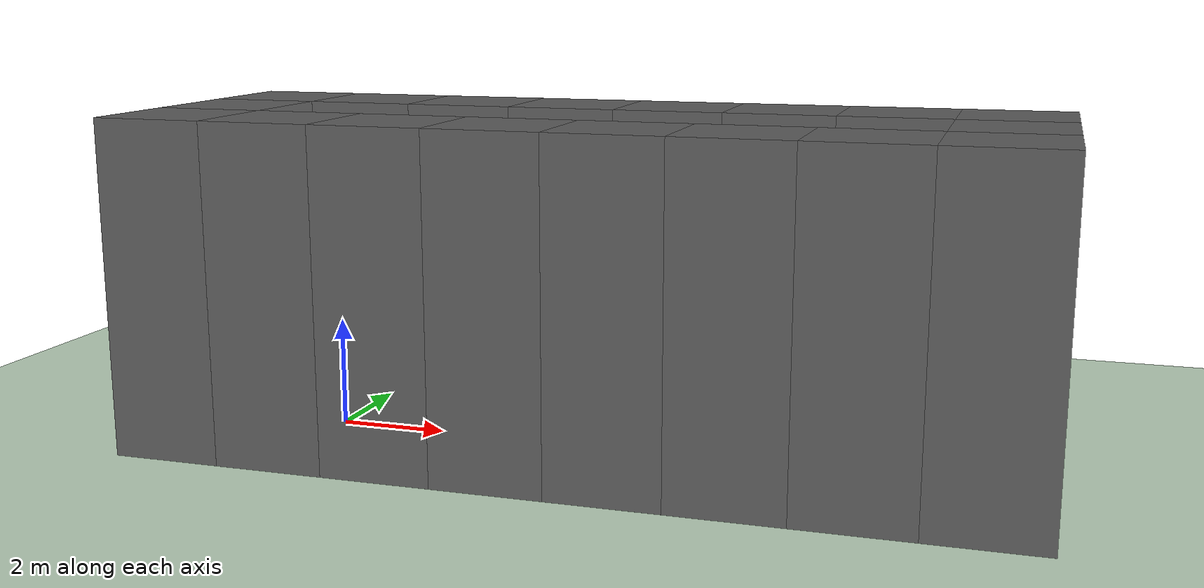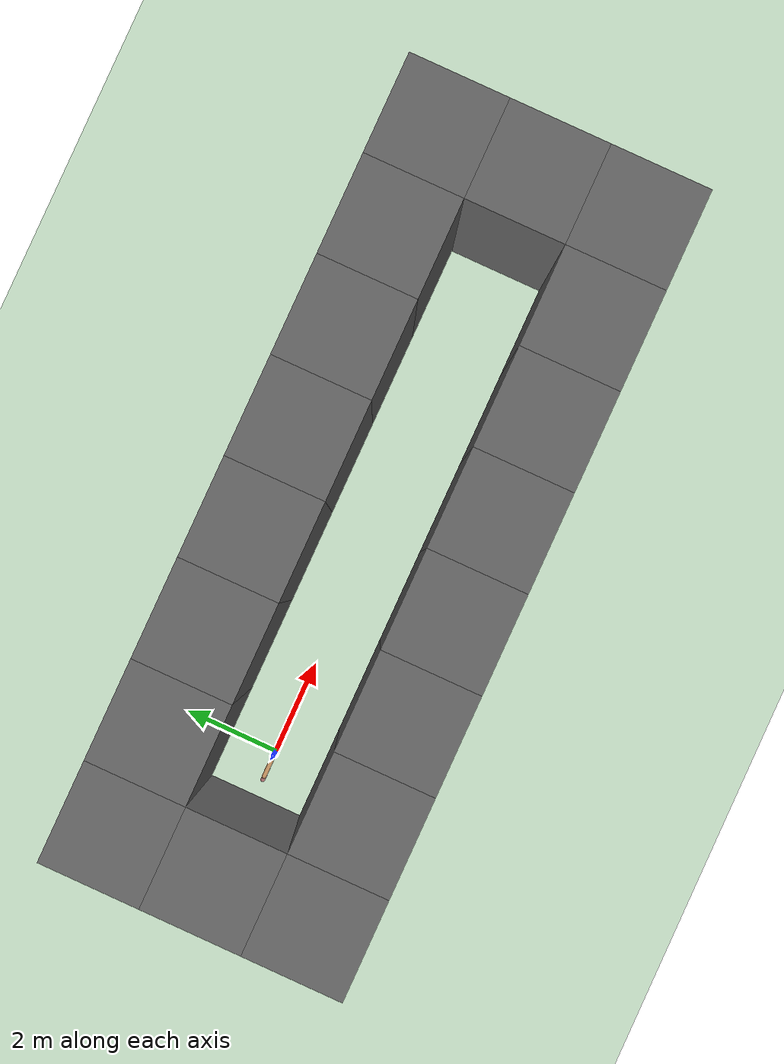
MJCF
<mujoco model="cheetah">
  <compiler angle="radian" coordinate="local" inertiafromgeom="true" settotalmass="14"/>
  <default>
    <joint armature=".1" damping=".01" limited="true" solimplimit="0 .8 .03" solreflimit=".02 1" stiffness="8"/>
    <geom conaffinity="0" condim="3" contype="1" friction=".4 .1 .1" rgba="0.8 0.6 .4 1" solimp="0.0 0.8 0.01" solref="0.02 1"/>
    <motor ctrllimited="true" ctrlrange="-1 1"/>
  </default>
  <size nstack="300000" nuser_geom="1"/>
  <option gravity="0 0 -9.81" timestep="0.01"/>
  <asset>
    <texture builtin="gradient" height="100" rgb1="1 1 1" rgb2="0 0 0" type="skybox" width="100"/>
    <texture builtin="flat" height="1278" mark="cross" markrgb="1 1 1" name="texgeom" random="0.01" rgb1="0.8 0.6 0.4" rgb2="0.8 0.6 0.4" type="cube" width="127"/>
    <texture builtin="checker" height="100" name="texplane" rgb1="0 0 0" rgb2="0.8 0.8 0.8" type="2d" width="100"/>
    <material name="MatPlane" reflectance="0.5" shininess="1" specular="1" texrepeat="150 150" texture="texplane"/>
    <material name="geom" texture="texgeom" texuniform="true"/>
  </asset>
  <worldbody>
    <light cutoff="100" diffuse="1 1 1" dir="-0 0 -1.3" directional="true" exponent="1" pos="0 0 1.3" specular=".1 .1 .1"/>
    <geom conaffinity="1" condim="3" material="MatPlane" name="floor" pos="0 0 0" rgba="0.8 0.9 0.8 1" size="200 200 200" type="plane"/>
    <body name="torso" pos="0 0 .7">
      <joint armature="0" axis="1 0 0" damping="0" limited="false" name="rootx" pos="0 0 0" stiffness="0" type="slide"/>
      <joint armature="0" axis="0 0 1" damping="0" limited="false" name="rootz" pos="0 0 0" stiffness="0" type="slide"/>
      <joint armature="0" axis="0 1 0" damping="0" limited="false" name="rooty" pos="0 0 0" stiffness="0" type="hinge"/>
      <geom fromto="-.5 0 0 .5 0 0" name="torso" size="0.046" type="capsule"/>
      <geom axisangle="0 1 0 .87" name="head" pos=".6 0 .1" size="0.046 .15" type="capsule"/>
      <body name="bthigh" pos="-.5 0 0">
        <joint axis="0 1 0" damping="6" name="bthigh" pos="0 0 0" range="-.52 1.05" stiffness="240" type="hinge"/>
        <geom axisangle="0 1 0 -3.8" name="bthigh" pos=".1 0 -.13" size="0.046 .145" type="capsule"/>
        <body name="bshin" pos=".16 0 -.25">
          <joint axis="0 1 0" damping="4.5" name="bshin" pos="0 0 0" range="-.785 .785" stiffness="180" type="hinge"/>
          <geom axisangle="0 1 0 -2.03" name="bshin" pos="-.14 0 -.07" rgba="0.9 0.6 0.6 1" size="0.046 .15" type="capsule"/>
          <body name="bfoot" pos="-.28 0 -.14">
            <joint axis="0 1 0" damping="3" name="bfoot" pos="0 0 0" range="-.4 .785" stiffness="120" type="hinge"/>
            <geom axisangle="0 1 0 -.27" name="bfoot" pos=".03 0 -.097" rgba="0.9 0.6 0.6 1" size="0.046 .094" type="capsule"/>
          </body>
        </body>
      </body>
      <body name="fthigh" pos=".5 0 0">
        <joint axis="0 1 0" damping="4.5" name="fthigh" pos="0 0 0" range="-1 .7" stiffness="180" type="hinge"/>
        <geom axisangle="0 1 0 .52" name="fthigh" pos="-.07 0 -.12" size="0.046 .133" type="capsule"/>
        <body name="fshin" pos="-.14 0 -.24">
          <joint axis="0 1 0" damping="3" name="fshin" pos="0 0 0" range="-1.2 .87" stiffness="120" type="hinge"/>
          <geom axisangle="0 1 0 -.6" name="fshin" pos=".065 0 -.09" rgba="0.9 0.6 0.6 1" size="0.046 .106" type="capsule"/>
          <body name="ffoot" pos=".13 0 -.18">
            <joint axis="0 1 0" damping="1.5" name="ffoot" pos="0 0 0" range="-.5 .5" stiffness="60" type="hinge"/>
            <geom axisangle="0 1 0 -.6" name="ffoot" pos=".045 0 -.07" rgba="0.9 0.6 0.6 1" size="0.046 .07" type="capsule"/>
          </body>
        </body>
      </body>
    </body>
    <geom conaffinity="1" contype="1" material="" name="block_0_0" pos="-2.000000 -2.000000 3.000000" rgba="0.4 0.4 0.4 1" size="1.000000 1.000000 3.000000" type="box"/>
    <geom conaffinity="1" contype="1" material="" name="block_0_1" pos="0.000000 -2.000000 3.000000" rgba="0.4 0.4 0.4 1" size="1.000000 1.000000 3.000000" type="box"/>
    <geom conaffinity="1" contype="1" material="" name="block_0_2" pos="2.000000 -2.000000 3.000000" rgba="0.4 0.4 0.4 1" size="1.000000 1.000000 3.000000" type="box"/>
    <geom conaffinity="1" contype="1" material="" name="block_0_3" pos="4.000000 -2.000000 3.000000" rgba="0.4 0.4 0.4 1" size="1.000000 1.000000 3.000000" type="box"/>
    <geom conaffinity="1" contype="1" material="" name="block_0_4" pos="6.000000 -2.000000 3.000000" rgba="0.4 0.4 0.4 1" size="1.000000 1.000000 3.000000" type="box"/>
    <geom conaffinity="1" contype="1" material="" name="block_0_5" pos="8.000000 -2.000000 3.000000" rgba="0.4 0.4 0.4 1" size="1.000000 1.000000 3.000000" type="box"/>
    <geom conaffinity="1" contype="1" material="" name="block_0_6" pos="10.000000 -2.000000 3.000000" rgba="0.4 0.4 0.4 1" size="1.000000 1.000000 3.000000" type="box"/>
    <geom conaffinity="1" contype="1" material="" name="block_0_7" pos="12.000000 -2.000000 3.000000" rgba="0.4 0.4 0.4 1" size="1.000000 1.000000 3.000000" type="box"/>
    <geom conaffinity="1" contype="1" material="" name="block_1_0" pos="-2.000000 0.000000 3.000000" rgba="0.4 0.4 0.4 1" size="1.000000 1.000000 3.000000" type="box"/>
    <geom conaffinity="1" contype="1" material="" name="block_1_7" pos="12.000000 0.000000 3.000000" rgba="0.4 0.4 0.4 1" size="1.000000 1.000000 3.000000" type="box"/>
    <geom conaffinity="1" contype="1" material="" name="block_2_0" pos="-2.000000 2.000000 3.000000" rgba="0.4 0.4 0.4 1" size="1.000000 1.000000 3.000000" type="box"/>
    <geom conaffinity="1" contype="1" material="" name="block_2_1" pos="0.000000 2.000000 3.000000" rgba="0.4 0.4 0.4 1" size="1.000000 1.000000 3.000000" type="box"/>
    <geom conaffinity="1" contype="1" material="" name="block_2_2" pos="2.000000 2.000000 3.000000" rgba="0.4 0.4 0.4 1" size="1.000000 1.000000 3.000000" type="box"/>
    <geom conaffinity="1" contype="1" material="" name="block_2_3" pos="4.000000 2.000000 3.000000" rgba="0.4 0.4 0.4 1" size="1.000000 1.000000 3.000000" type="box"/>
    <geom conaffinity="1" contype="1" material="" name="block_2_4" pos="6.000000 2.000000 3.000000" rgba="0.4 0.4 0.4 1" size="1.000000 1.000000 3.000000" type="box"/>
    <geom conaffinity="1" contype="1" material="" name="block_2_5" pos="8.000000 2.000000 3.000000" rgba="0.4 0.4 0.4 1" size="1.000000 1.000000 3.000000" type="box"/>
    <geom conaffinity="1" contype="1" material="" name="block_2_6" pos="10.000000 2.000000 3.000000" rgba="0.4 0.4 0.4 1" size="1.000000 1.000000 3.000000" type="box"/>
    <geom conaffinity="1" contype="1" material="" name="block_2_7" pos="12.000000 2.000000 3.000000" rgba="0.4 0.4 0.4 1" size="1.000000 1.000000 3.000000" type="box"/>
  </worldbody>
  <actuator>
    <motor gear="120" joint="bthigh" name="bthigh"/>
    <motor gear="90" joint="bshin" name="bshin"/>
    <motor gear="60" joint="bfoot" name="bfoot"/>
    <motor gear="120" joint="fthigh" name="fthigh"/>
    <motor gear="60" joint="fshin" name="fshin"/>
    <motor gear="30" joint="ffoot" name="ffoot"/>
  </actuator>
</mujoco>
